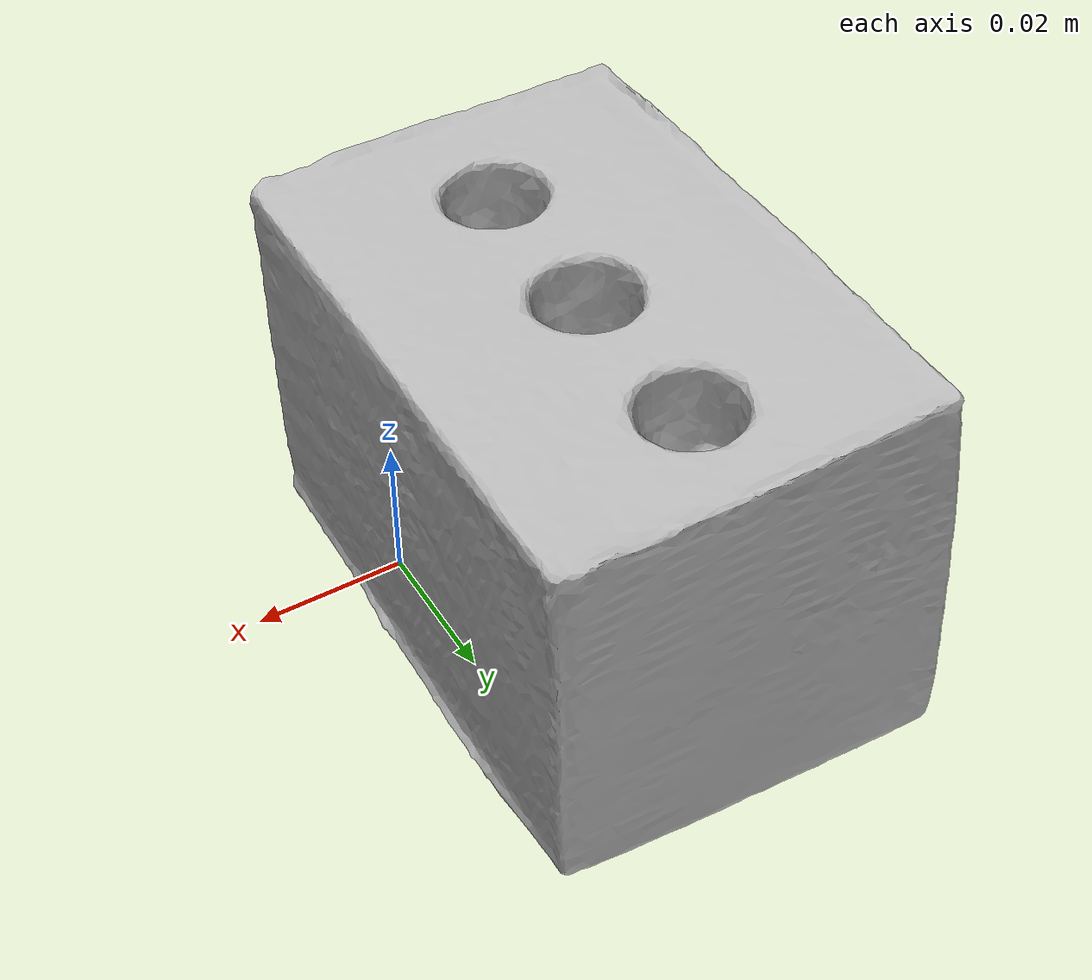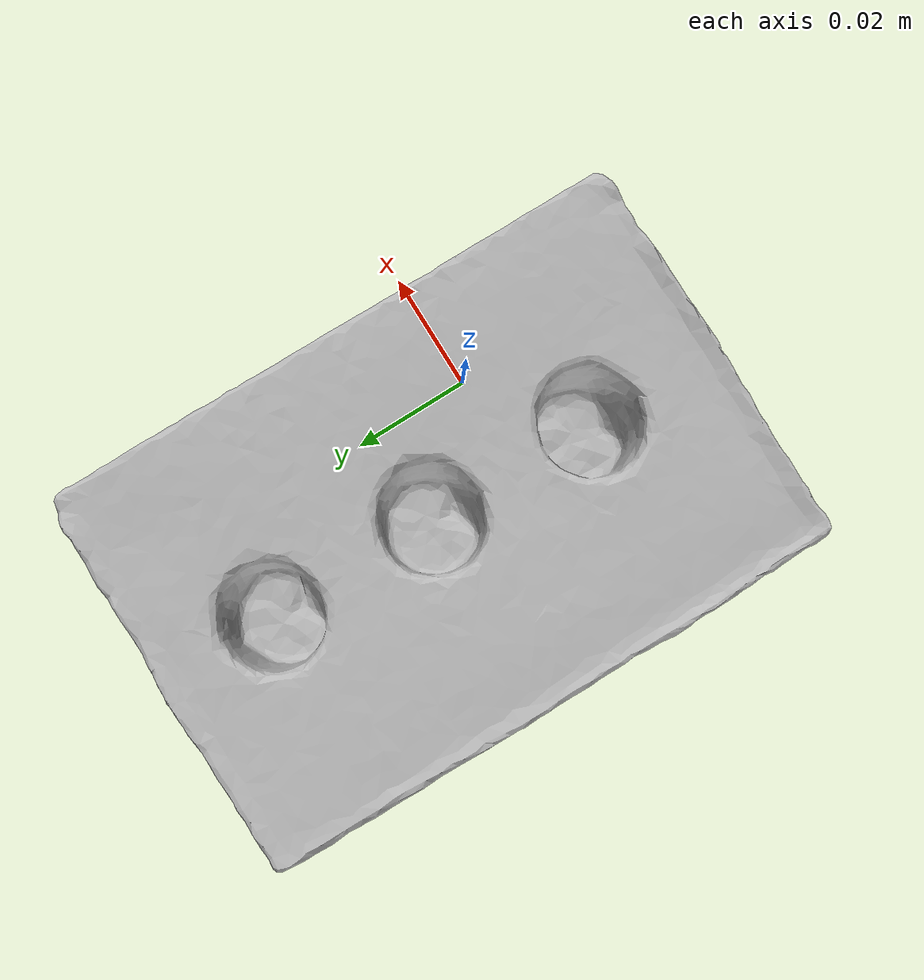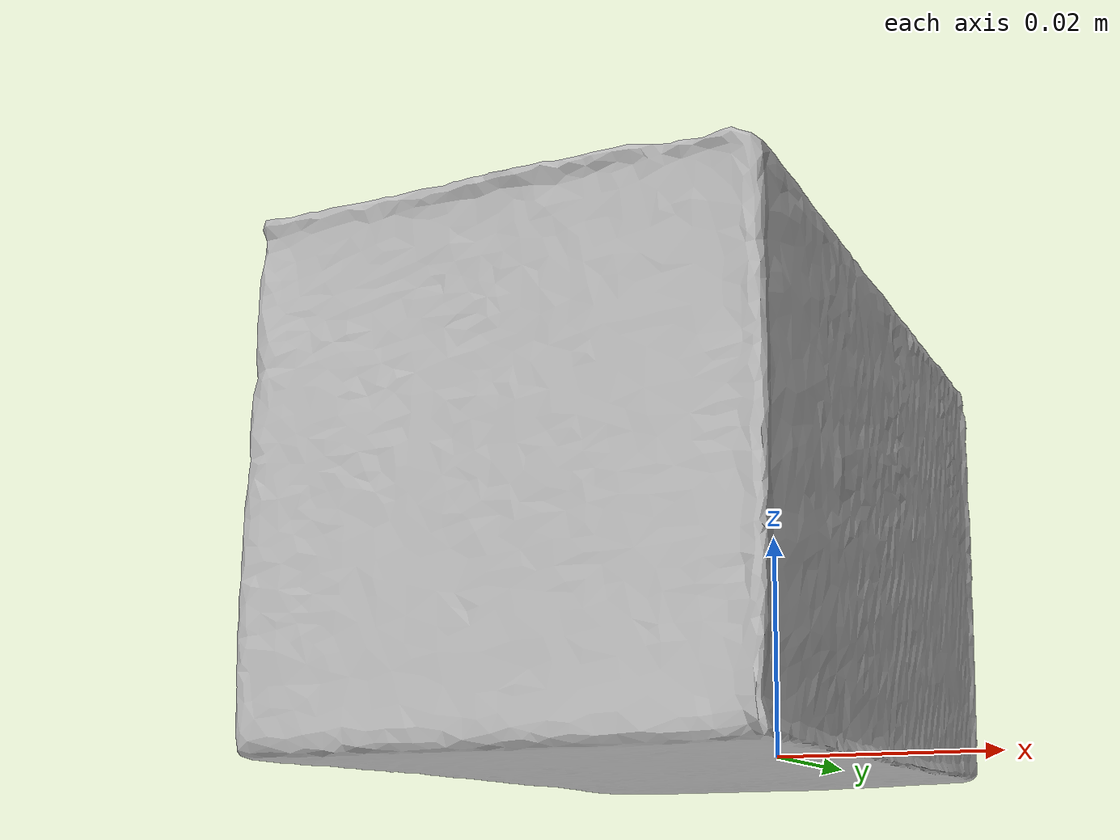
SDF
<?xml version='1.0'?>
<sdf version="1.4">
  <model name="foam_brick">
    <static>false</static>
    <link name="link">
      <inertial>
        <pose>-0.01862531574247814 0.0169548779068304 0.024644150528460397 1.2071431928515248 1.5217568314045988 -0.37887124819589607</pose>
        <mass>0.00018492656256430834</mass>
        <inertia>
          <ixx>1.2843873503583375e-07</ixx>
          <ixy>2.0068413468433154e-24</ixy>
          <ixz>2.447330711150594e-23</ixz>
          <iyy>1.2522943492836722e-07</iyy>
          <iyz>6.67088403067879e-26</iyz>
          <izz>7.768642722539469e-08</izz>
        </inertia>
      </inertial>
      <collision name="collision">
        <geometry>
          <mesh>
            <!-- Use a downsampled mesh for collisions -->
            <uri>model://061_foam_brick/google_16k/061_foam_brick.obj</uri>
            </mesh>
        </geometry>
        <surface>
          <friction>
            <ode>
              <mu>0.9</mu>
              <mu2>0.9</mu2>
            </ode>
          </friction>
          <contact>
            <ode>
              <kp>1000000000000.0</kp>
              <kd>1</kd>
              <min_depth>0.0001</min_depth>
              <max_vel>0.01</max_vel>
            </ode>
          </contact>
          <bounce>
            <restitution_coefficient>0.1</restitution_coefficient>
            <threshold>1000.0</threshold>
          </bounce>
        </surface>
      </collision>
      <visual name="visual">
        <geometry>
          <mesh>
            <uri>model://061_foam_brick/google_16k/061_foam_brick.dae</uri>
            </mesh>
        </geometry>
      </visual>
    </link>
  </model>
</sdf>
